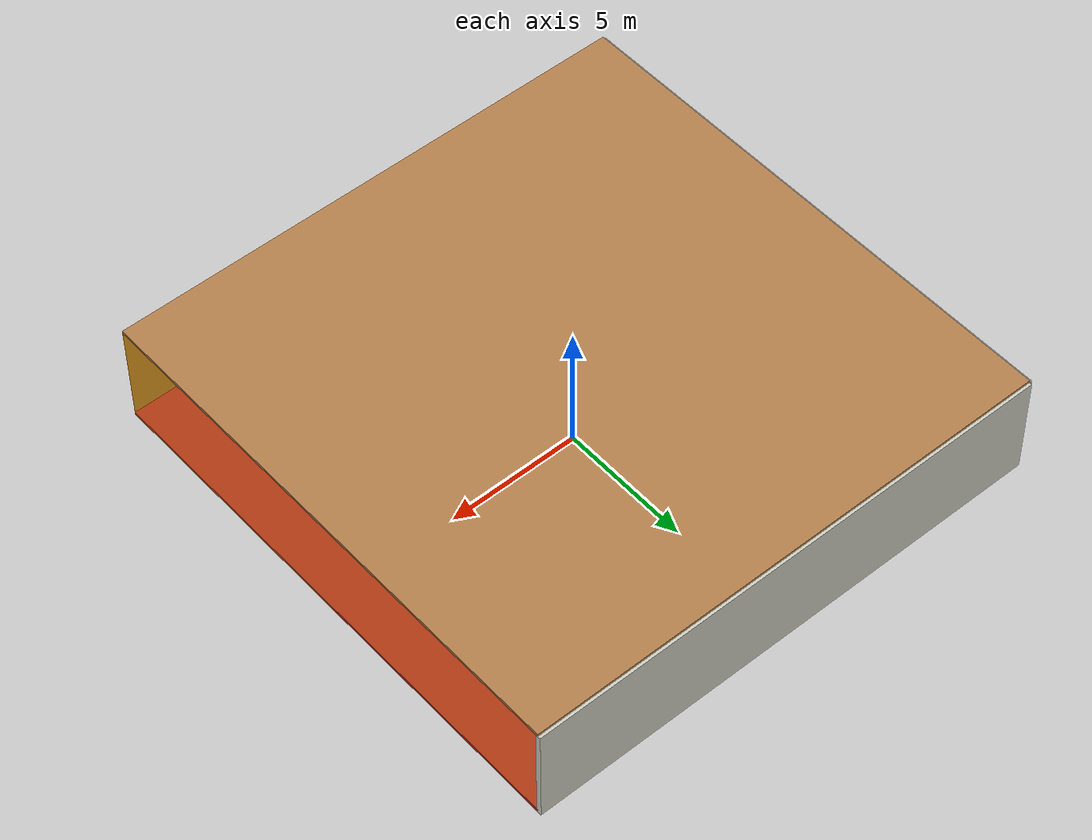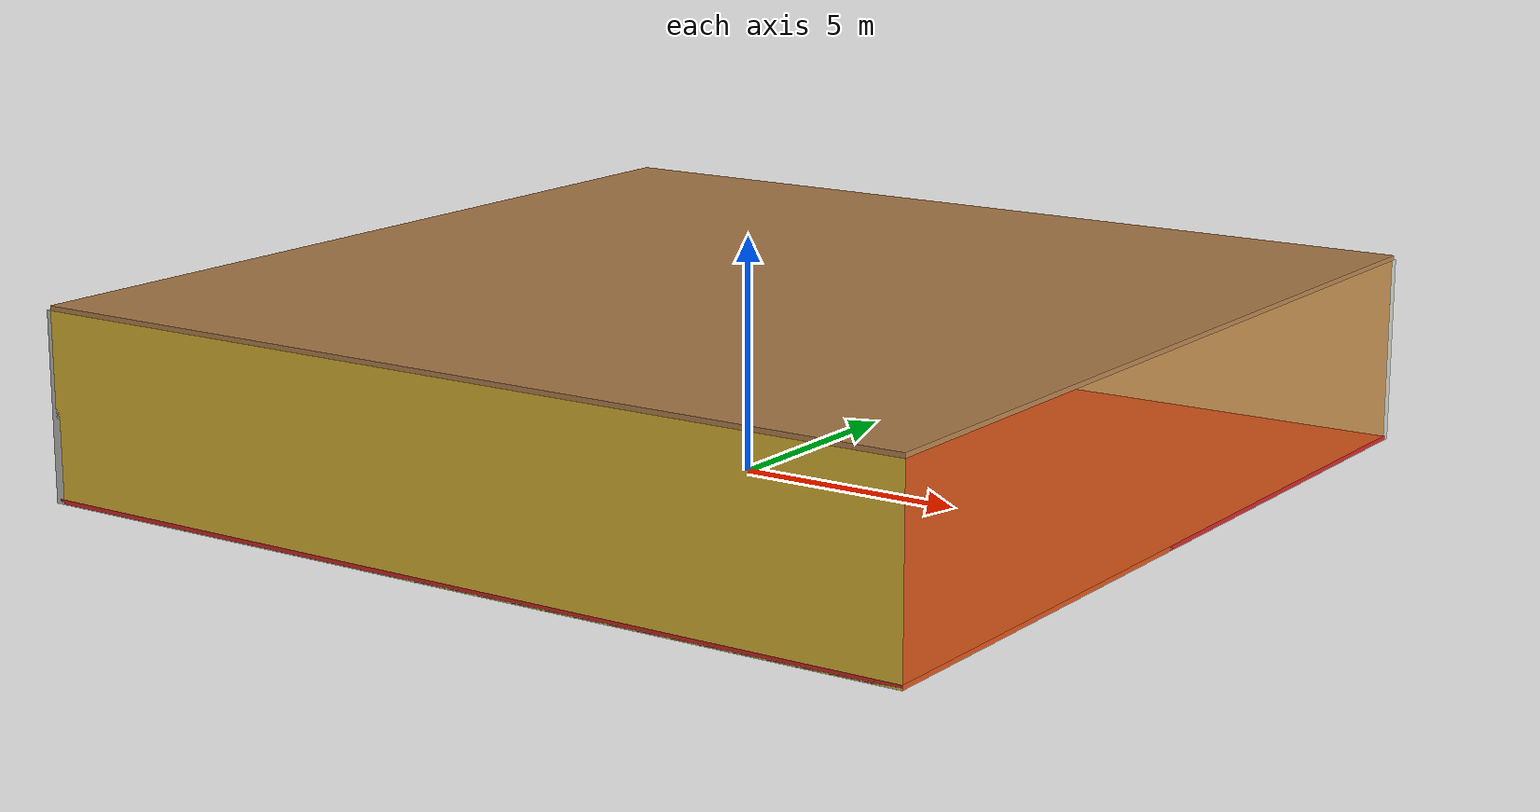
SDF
<sdf version="1.4">
 <world name="default">
  <physics type="ode">
   <max_step_size>0.001</max_step_size>
   <real_time_factor>1</real_time_factor>
   <real_time_update_rate>1000</real_time_update_rate>
   <gravity>0 0 -9.8</gravity>
  </physics>
  <scene><ambient>0.4 0.4 0.4 1</ambient><background>0.7 0.7 0.7 1</background><shadows>1</shadows></scene>
  <model name="Surrounding">
   <static>1</static>
   <link name="Ceiling">
    <collision name="Ceiling_Collision"><geometry><box><size>20 20 0.1</size></box></geometry></collision>
    <visual name="Ceiling_Visual">
     <geometry><box><size>20 20 0.1</size></box></geometry>
     <material>
      <script><uri>file://media/materials/scripts/gazebo.material</uri><name>Gazebo/Wood</name></script>
     </material>
    </visual>
    <pose>0 0 4.05 0 0 0</pose>
   </link>
   <link name="Wall_South">
    <collision name="Wall_South_Collision">
     <geometry><box><size>20 0 4</size></box></geometry>
     <pose>0 0 2 0 -0 0</pose>
    </collision>
    <visual name="Wall_South_Visual">
     <pose>0 0 2 0 -0 0</pose>
     <geometry><box><size>20 0 4</size></box></geometry>
     <material>
      <script><uri>file://media/materials/scripts/gazebo.material</uri><name>Gazebo/Gold</name></script>
     </material>
    </visual>
    <velocity_decay><linear>0</linear><angular>0</angular></velocity_decay>
    <pose>0 -10 0 0 -0 0</pose>
   </link>
   <link name="Wall_East">
    <collision name="Wall_21_Collision">
     <geometry><box><size>20 0 4</size></box></geometry>
     <pose>0 0 2 0 -0 0</pose>
    </collision>
    <visual name="Wall_21_Visual">
     <pose>0 0 2 0 -0 0</pose>
     <geometry><box><size>20 0 4</size></box></geometry>
     <material>
      <script>
       <uri>file://media/materials/scripts/gazebo.material</uri>
       <name>Gazebo/OrangeTransparent</name>
      </script>
     </material>
    </visual>
    <velocity_decay><linear>0</linear><angular>0</angular></velocity_decay>
    <pose>10 0 0 0 -0 1.5708</pose>
   </link>
   <link name="Wall_North">
    <collision name="Wall_22_Collision">
     <geometry><box><size>20 0.2 4</size></box></geometry>
     <pose>0 0 2 0 -0 0</pose>
    </collision>
    <visual name="Wall_22_Visual">
     <pose>0 0 2 0 -0 0</pose>
     <geometry><box><size>20 0.2 4</size></box></geometry>
     <material>
      <script><uri>file://media/materials/scripts/gazebo.material</uri><name>Gazebo/PaintedWall</name></script>
     </material>
    </visual>
    <velocity_decay><linear>0</linear><angular>0</angular></velocity_decay>
    <pose>0 10 0 0 -0 0</pose>
   </link>
   <link name="Wall_West">
    <collision name="Wall_23_Collision">
     <geometry><box><size>20 0.2 4</size></box></geometry>
     <pose>0 0 2 0 -0 0</pose>
    </collision>
    <visual name="Wall_23_Visual">
     <pose>0 0 2 0 -0 0</pose>
     <geometry><box><size>20 0.2 4</size></box></geometry>
     <material>
      <script><uri>file://media/materials/scripts/gazebo.material</uri><name>Gazebo/PioneerBody</name></script>
     </material>
    </visual>
    <velocity_decay><linear>0</linear><angular>0</angular></velocity_decay>
    <pose>-10 0 0 0 0 -1.5708</pose>
   </link>
   <link name="Ground_link">
    <collision name="collision">
     <pose>0 0 .05 0 -0 0</pose>
     <geometry><box><size>20 20 0.1</size></box></geometry>
    </collision>
    <visual name="visual">
     <pose>0 0 .05 0 -0 0</pose>
     <geometry><box><size>20 20 0.1</size></box></geometry>
     <material>
      <script><uri>file://media/materials/scripts/gazebo.material</uri><name>Gazebo/RedGlow</name></script>
     </material>
    </visual>
   </link>
   <static>1</static>
  </model>
  <spherical_coordinates>
   <surface_model>EARTH_WGS84</surface_model>
   <latitude_deg>0</latitude_deg>
   <longitude_deg>0</longitude_deg>
   <elevation>0</elevation>
   <heading_deg>0</heading_deg>
  </spherical_coordinates>
  <light name="lightball_0" type="diffuse">
   <diffuse>0.8 0.8 0.8 1</diffuse>
   <specular>0.2 0.2 0.2 1</specular>
   <attenuation>
    <range>100</range>
    <constant>0.7</constant>
    <linear>0.01</linear>
    <quadratic>0.001</quadratic>
   </attenuation>
   <direction>-0.5 0.1 -0.9</direction>
   <pose>-9.14028484634 -3.78107817355 2.44303614412 0 0 0</pose>
  </light>
  <light name="lightball_1" type="diffuse">
   <diffuse>0.8 0.8 0.8 1</diffuse>
   <specular>0.2 0.2 0.2 1</specular>
   <attenuation>
    <range>100</range>
    <constant>0.7</constant>
    <linear>0.01</linear>
    <quadratic>0.001</quadratic>
   </attenuation>
   <direction>-0.5 0.1 -0.9</direction>
   <pose>3.07904342508 7.10430591236 3.82926992 0 0 0</pose>
  </light>
  <light name="lightball_2" type="diffuse">
   <diffuse>0.8 0.8 0.8 1</diffuse>
   <specular>0.2 0.2 0.2 1</specular>
   <attenuation>
    <range>100</range>
    <constant>0.7</constant>
    <linear>0.01</linear>
    <quadratic>0.001</quadratic>
   </attenuation>
   <direction>-0.5 0.1 -0.9</direction>
   <pose>4.14680278828 -6.74613642839 1.70264220763 0 0 0</pose>
  </light>
  <light name="lightball_3" type="diffuse">
   <diffuse>0.8 0.8 0.8 1</diffuse>
   <specular>0.2 0.2 0.2 1</specular>
   <attenuation>
    <range>100</range>
    <constant>0.7</constant>
    <linear>0.01</linear>
    <quadratic>0.001</quadratic>
   </attenuation>
   <direction>-0.5 0.1 -0.9</direction>
   <pose>-9.25985313424 5.7393625121 1.92101635798 0 0 0</pose>
  </light>
  <light name="lightball_4" type="diffuse">
   <diffuse>0.8 0.8 0.8 1</diffuse>
   <specular>0.2 0.2 0.2 1</specular>
   <attenuation>
    <range>100</range>
    <constant>0.7</constant>
    <linear>0.01</linear>
    <quadratic>0.001</quadratic>
   </attenuation>
   <direction>-0.5 0.1 -0.9</direction>
   <pose>-5.97605744197 -7.33618540421 3.0227325601 0 0 0</pose>
  </light>
  <light name="lightball_5" type="diffuse">
   <diffuse>0.8 0.8 0.8 1</diffuse>
   <specular>0.2 0.2 0.2 1</specular>
   <attenuation>
    <range>100</range>
    <constant>0.7</constant>
    <linear>0.01</linear>
    <quadratic>0.001</quadratic>
   </attenuation>
   <direction>-0.5 0.1 -0.9</direction>
   <pose>-1.77079827217 -7.71640176147 2.06632479925 0 0 0</pose>
  </light>
  <light name="lightball_6" type="diffuse">
   <diffuse>0.8 0.8 0.8 1</diffuse>
   <specular>0.2 0.2 0.2 1</specular>
   <attenuation>
    <range>100</range>
    <constant>0.7</constant>
    <linear>0.01</linear>
    <quadratic>0.001</quadratic>
   </attenuation>
   <direction>-0.5 0.1 -0.9</direction>
   <pose>-2.62714105715 4.99944714132 3.26534669663 0 0 0</pose>
  </light>
  <light name="lightball_7" type="diffuse">
   <diffuse>0.8 0.8 0.8 1</diffuse>
   <specular>0.2 0.2 0.2 1</specular>
   <attenuation>
    <range>100</range>
    <constant>0.7</constant>
    <linear>0.01</linear>
    <quadratic>0.001</quadratic>
   </attenuation>
   <direction>-0.5 0.1 -0.9</direction>
   <pose>8.18682777826 2.85867692182 2.54232092599 0 0 0</pose>
  </light>
  <light name="lightball_8" type="diffuse">
   <diffuse>0.8 0.8 0.8 1</diffuse>
   <specular>0.2 0.2 0.2 1</specular>
   <attenuation>
    <range>100</range>
    <constant>0.7</constant>
    <linear>0.01</linear>
    <quadratic>0.001</quadratic>
   </attenuation>
   <direction>-0.5 0.1 -0.9</direction>
   <pose>3.13936484836 -4.9567432274 1.96241496832 0 0 0</pose>
  </light>
  <light name="lightball_9" type="diffuse">
   <diffuse>0.8 0.8 0.8 1</diffuse>
   <specular>0.2 0.2 0.2 1</specular>
   <attenuation>
    <range>100</range>
    <constant>0.7</constant>
    <linear>0.01</linear>
    <quadratic>0.001</quadratic>
   </attenuation>
   <direction>-0.5 0.1 -0.9</direction>
   <pose>0.732356075349 -5.27327290701 3.74076619405 0 0 0</pose>
  </light>
  <light name="lightball_10" type="diffuse">
   <diffuse>0.8 0.8 0.8 1</diffuse>
   <specular>0.2 0.2 0.2 1</specular>
   <attenuation>
    <range>100</range>
    <constant>0.7</constant>
    <linear>0.01</linear>
    <quadratic>0.001</quadratic>
   </attenuation>
   <direction>-0.5 0.1 -0.9</direction>
   <pose>-1.17590759285 -2.01709562787 1.20543937673 0 0 0</pose>
  </light>
  <light name="lightball_11" type="diffuse">
   <diffuse>0.8 0.8 0.8 1</diffuse>
   <specular>0.2 0.2 0.2 1</specular>
   <attenuation>
    <range>100</range>
    <constant>0.7</constant>
    <linear>0.01</linear>
    <quadratic>0.001</quadratic>
   </attenuation>
   <direction>-0.5 0.1 -0.9</direction>
   <pose>6.03997180862 0.183223595648 3.18246011967 0 0 0</pose>
  </light>
  <light name="lightball_12" type="diffuse">
   <diffuse>0.8 0.8 0.8 1</diffuse>
   <specular>0.2 0.2 0.2 1</specular>
   <attenuation>
    <range>100</range>
    <constant>0.7</constant>
    <linear>0.01</linear>
    <quadratic>0.001</quadratic>
   </attenuation>
   <direction>-0.5 0.1 -0.9</direction>
   <pose>2.59367324511 6.14325000424 0.87905579897 0 0 0</pose>
  </light>
  <light name="lightball_13" type="diffuse">
   <diffuse>0.8 0.8 0.8 1</diffuse>
   <specular>0.2 0.2 0.2 1</specular>
   <attenuation>
    <range>100</range>
    <constant>0.7</constant>
    <linear>0.01</linear>
    <quadratic>0.001</quadratic>
   </attenuation>
   <direction>-0.5 0.1 -0.9</direction>
   <pose>-7.26203448489 8.50745162385 0.948288409802 0 0 0</pose>
  </light>
  <include><uri>model://table</uri><pose>-8.32008430962 4.29336270401 0 0 0 0.444493602507</pose></include>
  <include>
   <uri>model://robocup_3Dsim_goal</uri>
   <pose>-7.03396247825 6.77360692787 0 0 0 1.96078191493</pose>
  </include>
  <include><uri>model://cabinet</uri><pose>1.50700197597 -5.48162281267 0 0 0 3.09587696231</pose></include>
  <include><uri>model://cabinet</uri><pose>3.48114709233 -6.58275846676 0 0 0 0.642346709086</pose></include>
 </world>
</sdf>

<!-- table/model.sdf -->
<sdf version="1.5">
  <model name="table">
    <static>true</static>
    <link name="link">
      <collision name="surface">
        <pose>0 0 1.0 0 0 0</pose>
        <geometry>
          <box>
            <size>1.5 0.8 0.03</size>
          </box>
        </geometry>
        <surface>
          <friction>
            <ode>
              <mu>0.6</mu>
              <mu2>0.6</mu2>
            </ode>
          </friction>
        </surface>
      </collision>
      <visual name="visual1">
        <pose>0 0 1.0 0 0 0</pose>
        <geometry>
          <box>
            <size>1.5 0.8 0.03</size>
          </box>
        </geometry>
        <material>
          <script>
            <uri>model://media/materials/scripts/gazebo.material</uri>
            <name>Gazebo/Wood</name>
          </script>
        </material>
      </visual>
      <collision name="front_left_leg">
        <pose>0.68 0.38 0.5 0 0 0</pose>
        <geometry>
          <cylinder>
            <radius>0.02</radius>
            <length>1.0</length>
          </cylinder>
        </geometry>
      </collision>
      <visual name="front_left_leg">
        <pose>0.68 0.38 0.5 0 0 0</pose>
        <geometry>
          <cylinder>
            <radius>0.02</radius>
            <length>1.0</length>
          </cylinder>
        </geometry>
        <material>
          <script>
            <uri>model://media/materials/scripts/gazebo.material</uri>
            <name>Gazebo/Grey</name>
          </script>
        </material>
      </visual>
      <collision name="front_right_leg">
        <pose>0.68 -0.38 0.5 0 0 0</pose>
        <geometry>
          <cylinder>
            <radius>0.02</radius>
            <length>1.0</length>
          </cylinder>
        </geometry>
      </collision>
      <visual name="front_right_leg">
        <pose>0.68 -0.38 0.5 0 0 0</pose>
        <geometry>
          <cylinder>
            <radius>0.02</radius>
            <length>1.0</length>
          </cylinder>
        </geometry>
        <material>
          <script>
            <uri>model://media/materials/scripts/gazebo.material</uri>
            <name>Gazebo/Grey</name>
          </script>
        </material>
      </visual>
      <collision name="back_right_leg">
        <pose>-0.68 -0.38 0.5 0 0 0</pose>
        <geometry>
          <cylinder>
            <radius>0.02</radius>
            <length>1.0</length>
          </cylinder>
        </geometry>
      </collision>
      <visual name="back_right_leg">
        <pose>-0.68 -0.38 0.5 0 0 0</pose>
        <geometry>
          <cylinder>
            <radius>0.02</radius>
            <length>1.0</length>
          </cylinder>
        </geometry>
        <material>
          <script>
            <uri>model://media/materials/scripts/gazebo.material</uri>
            <name>Gazebo/Grey</name>
          </script>
        </material>
      </visual>
      <collision name="back_left_leg">
        <pose>-0.68 0.38 0.5 0 0 0</pose>
        <geometry>
          <cylinder>
            <radius>0.02</radius>
            <length>1.0</length>
          </cylinder>
        </geometry>
      </collision>
      <visual name="back_left_leg">
        <pose>-0.68 0.38 0.5 0 0 0</pose>
        <geometry>
          <cylinder>
            <radius>0.02</radius>
            <length>1.0</length>
          </cylinder>
        </geometry>
        <material>
          <script>
            <uri>model://media/materials/scripts/gazebo.material</uri>
            <name>Gazebo/Grey</name>
          </script>
        </material>
      </visual>
    </link>
  </model>
</sdf>

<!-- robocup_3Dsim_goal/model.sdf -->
<sdf version="1.5">
  <model name="robocup_3d_goal">
    <static>true</static>
    <link name="left_post">
      <pose>0 1.05 0.45 0 0 0</pose>
      <collision name="collision">
        <geometry>
          <cylinder>
            <radius>0.05</radius>
            <length>0.9</length>
          </cylinder>
        </geometry>
      </collision>
      <visual name="visual">
        <geometry>
          <cylinder>
            <radius>0.05</radius>
            <length>0.9</length>
          </cylinder>
        </geometry>
        <material>
          <script>
            <uri>file://media/materials/scripts/gazebo.material</uri>
            <name>Gazebo/ZincYellow</name>
          </script>
        </material>
      </visual>
    </link>
    <link name="left_support_horiz_lower">
      <pose>0.30 1.05 0.01 0 0 0</pose>
      <collision name="collision">
        <geometry>
          <box>
            <size>0.50 0.02 0.02</size>
          </box>
        </geometry>
      </collision>
      <visual name="visual">
        <geometry>
          <box>
            <size>0.50 0.02 0.02</size>
          </box>
        </geometry>
        <material>
          <script>
            <uri>file://media/materials/scripts/gazebo.material</uri>
            <name>Gazebo/White</name>
          </script>
        </material>
      </visual>
    </link>
    <link name="left_support_horiz_upper">
      <pose>0.30 1.05 0.79 0 0 0</pose>
      <collision name="collision">
        <geometry>
          <box>
            <size>0.50 0.02 0.02</size>
          </box>
        </geometry>
      </collision>
      <visual name="visual">
        <geometry>
          <box>
            <size>0.50 0.02 0.02</size>
          </box>
        </geometry>
        <material>
          <script>
            <uri>file://media/materials/scripts/gazebo.material</uri>
            <name>Gazebo/White</name>
          </script>
        </material>
      </visual>
    </link>
    <link name="left_support_vertical">
      <pose>0.56 1.05 0.4 0 1.5708 0</pose>
      <collision name="collision">
        <geometry>
          <box>
            <size>0.80 0.02 0.02</size>
          </box>
        </geometry>
      </collision>
      <visual name="visual">
        <geometry>
          <box>
            <size>0.80 0.02 0.02</size>
          </box>
        </geometry>
        <material>
          <script>
            <uri>file://media/materials/scripts/gazebo.material</uri>
            <name>Gazebo/White</name>
          </script>
        </material>
      </visual>
    </link>
    <link name="right_support_horiz_lower">
      <pose>0.30 -1.05 0.01 0 0 0</pose>
      <collision name="collision">
        <geometry>
          <box>
            <size>0.50 0.02 0.02</size>
          </box>
        </geometry>
      </collision>
      <visual name="visual">
        <geometry>
          <box>
            <size>0.50 0.02 0.02</size>
          </box>
        </geometry>
        <material>
          <script>
            <uri>file://media/materials/scripts/gazebo.material</uri>
            <name>Gazebo/White</name>
          </script>
        </material>
      </visual>
    </link>
    <link name="right_support_horiz_upper">
      <pose>0.30 -1.05 0.79 0 0 0</pose>
      <collision name="collision">
        <geometry>
          <box>
            <size>0.50 0.02 0.02</size>
          </box>
        </geometry>
      </collision>
      <visual name="visual">
        <geometry>
          <box>
            <size>0.50 0.02 0.02</size>
          </box>
        </geometry>
        <material>
          <script>
            <uri>file://media/materials/scripts/gazebo.material</uri>
            <name>Gazebo/White</name>
          </script>
        </material>
      </visual>
    </link>
    <link name="right_support_vertical">
      <pose>0.56 -1.05 0.4 0 1.5708 0</pose>
      <collision name="collision">
        <geometry>
          <box>
            <size>0.80 0.02 0.02</size>
          </box>
        </geometry>
      </collision>
      <visual name="visual">
        <geometry>
          <box>
            <size>0.80 0.02 0.02</size>
          </box>
        </geometry>
        <material>
          <script>
            <uri>file://media/materials/scripts/gazebo.material</uri>
            <name>Gazebo/White</name>
          </script>
        </material>
      </visual>
    </link>
    <link name="center_support_horiz_lower">
      <pose>0.56 0 0.01 0 1.5708 0</pose>
      <collision name="collision">
        <geometry>
          <box>
            <size>0.02 2.08 0.02</size>
          </box>
        </geometry>
      </collision>
      <visual name="visual">
        <geometry>
          <box>
            <size>0.02 2.08 0.02</size>
          </box>
        </geometry>
        <material>
          <script>
            <uri>file://media/materials/scripts/gazebo.material</uri>
            <name>Gazebo/White</name>
          </script>
        </material>
      </visual>
    </link>
    <link name="center_support_horiz_upper">
      <pose>0.56 0 0.79 0 1.5708 0</pose>
      <collision name="collision">
        <geometry>
          <box>
            <size>0.02 2.08 0.02</size>
          </box>
        </geometry>
      </collision>
      <visual name="visual">
        <geometry>
          <box>
            <size>0.02 2.08 0.02</size>
          </box>
        </geometry>
        <material>
          <script>
            <uri>file://media/materials/scripts/gazebo.material</uri>
            <name>Gazebo/White</name>
          </script>
        </material>
      </visual>
    </link>
    <link name="right_post">
      <pose>0 -1.05 0.45 0 0 0</pose>
      <collision name="collision">
        <geometry>
          <cylinder>
            <radius>0.05</radius>
            <length>0.9</length>
          </cylinder>
        </geometry>
      </collision>
      <visual name="visual">
        <geometry>
          <cylinder>
            <radius>0.05</radius>
            <length>0.9</length>
          </cylinder>
        </geometry>
        <material>
          <script>
            <uri>file://media/materials/scripts/gazebo.material</uri>
            <name>Gazebo/ZincYellow</name>
          </script>
        </material>
      </visual>
    </link>
    <link name="crossbar">
      <pose>0 0 0.85 1.57 1.57 0</pose>
      <collision name="collision">
        <geometry>
          <cylinder>
            <radius>0.05</radius>
            <length>2.0</length>
          </cylinder>
        </geometry>
      </collision>
      <visual name="visual">
        <geometry>
          <cylinder>
            <radius>0.05</radius>
            <length>2.0</length>
          </cylinder>
        </geometry>
        <material>
          <script>
            <uri>file://media/materials/scripts/gazebo.material</uri>
            <name>Gazebo/ZincYellow</name>
          </script>
        </material>
      </visual>
    </link>
    <link name="center_net">
      <pose>0.56 0 0.40 0 0 0</pose>
      <collision name="collision">
        <geometry>
          <box>
            <size>0.01 2.1 0.80</size>
          </box>
        </geometry>
      </collision>
      <visual name="visual">
        <geometry>
          <box>
            <size>0.01 2.1 0.80</size>
          </box>
        </geometry>
        <material>
          <script>
            <uri>model://../model_source/models/robocup09_spl_field/materials/scripts/</uri>
            <uri>model://../model_source/models/robocup09_spl_field/materials/textures/</uri>
            <name>RoboCup/Net</name>
          </script>
        </material>
      </visual>
    </link>
    <link name="left_net">
      <pose>0.30 1.05 0.40 0 0 0</pose>
      <collision name="collision">
        <geometry>
          <box>
            <size>0.50 0.01 0.76</size>
          </box>
        </geometry>
      </collision>
      <visual name="visual">
        <geometry>
          <box>
            <size>0.50 0.01 0.76</size>
          </box>
        </geometry>
        <material>
          <script>
            <uri>model://../model_source/models/robocup09_spl_field/materials/scripts/</uri>
            <uri>model://../model_source/models/robocup09_spl_field/materials/textures/</uri>
            <name>RoboCup/Net</name>
          </script>
        </material>
      </visual>
    </link>
    <link name="right_net">
      <pose>0.30 -1.05 0.40 0 0 0</pose>
      <collision name="collision">
        <geometry>
          <box>
            <size>0.50 0.01 0.76</size>
          </box>
        </geometry>
      </collision>
      <visual name="visual">
        <geometry>
          <box>
            <size>0.50 0.01 0.76</size>
          </box>
        </geometry>
        <material>
          <script>
            <uri>model://../model_source/models/robocup09_spl_field/materials/scripts/</uri>
            <uri>model://../model_source/models/robocup09_spl_field/materials/textures/</uri>
            <name>RoboCup/Net</name>
          </script>
        </material>
      </visual>
    </link>
  </model>
</sdf>

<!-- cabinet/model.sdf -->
<sdf version="1.5">
  <model name="cabinet">
    <static>true</static>
    <link name="cabinet_bottom_plate">
      <inertial>
        <pose>0 0 -1 0 0 0</pose>
        <inertia>
          <ixx>2.050000</ixx>
          <ixy>0</ixy>
          <ixz>0</ixz>
          <iyy>2.050000</iyy>
          <iyz>0</iyz>
          <izz>2.050000</izz>
        </inertia>
        <mass>25.000000</mass>
      </inertial>
      <collision name="cabinet_bottom_plate_geom">
        <pose>0 0 0.010000 0 0 0</pose>
        <geometry>
          <box>
            <size>0.450000 0.450000 0.020000</size>
          </box>
        </geometry>
      </collision>
      <visual name="cabinet_bottom_plate_geom_visual">
        <pose>0 0 0.010000 0 0 0</pose>
        <geometry>
          <box>
            <size>0.450000 0.450000 0.020000</size>
          </box>
        </geometry>
        <material>
          <script>
            <uri>model://media/materials/scripts/gazebo.material</uri>
            <name>Gazebo/Wood</name>
          </script>
        </material>
      </visual>
      <collision name="cabinet_bottom_plate_geom_cabinet_back_plate">
        <pose>0.235000 0 0.510000 0 0 0</pose>
        <geometry>
          <box>
            <size>0.020000 0.450000 1.020000</size>
          </box>
        </geometry>
      </collision>
      <visual name="cabinet_bottom_plate_geom_cabinet_back_plate_visual">
        <pose>0.235000 0 0.510000 0 0 0</pose>
        <geometry>
          <box>
            <size>0.020000 0.450000 1.020000</size>
          </box>
        </geometry>
        <material>
          <script>
            <uri>model://media/materials/scripts/gazebo.material</uri>
            <name>Gazebo/Wood</name>
          </script>
        </material>
      </visual>
      <collision name="cabinet_bottom_plate_geom_cabinet_left_plate">
        <pose>0 0.235000 0.510000 0 0 0</pose>
        <geometry>
          <box>
            <size>0.450000 0.020000 1.020000</size>
          </box>
        </geometry>
      </collision>
      <visual name="cabinet_bottom_plate_geom_cabinet_left_plate_visual">
        <pose>0 0.235000 0.510000 0 0 0</pose>
        <geometry>
          <box>
            <size>0.450000 0.020000 1.020000</size>
          </box>
        </geometry>
        <material>
          <script>
            <uri>model://media/materials/scripts/gazebo.material</uri>
            <name>Gazebo/Wood</name>
          </script>
        </material>
      </visual>
      <collision name="cabinet_bottom_plate_geom_cabinet_middle_plate">
        <pose>0 0 0.510000 0 0 0</pose>
        <geometry>
          <box>
            <size>0.450000 0.450000 0.020000</size>
          </box>
        </geometry>
      </collision>
      <visual name="cabinet_bottom_plate_geom_cabinet_middle_plate_visual">
        <pose>0 0 0.510000 0 0 0</pose>
        <geometry>
          <box>
            <size>0.450000 0.450000 0.020000</size>
          </box>
        </geometry>
        <material>
          <script>
            <uri>model://media/materials/scripts/gazebo.material</uri>
            <name>Gazebo/Wood</name>
          </script>
        </material>
      </visual>
      <collision name="cabinet_bottom_plate_geom_cabinet_right_plate">
        <pose>0 -0.235000 0.510000 0 0 0</pose>
        <geometry>
          <box>
            <size>0.450000 0.020000 1.020000</size>
          </box>
        </geometry>
      </collision>
      <visual name="cabinet_bottom_plate_geom_cabinet_right_plate_visual">
        <pose>0 -0.235000 0.510000 0 0 0</pose>
        <geometry>
          <box>
            <size>0.450000 0.020000 1.020000</size>
          </box>
        </geometry>
        <material>
          <script>
            <uri>model://media/materials/scripts/gazebo.material</uri>
            <name>Gazebo/Wood</name>
          </script>
        </material>
      </visual>
      <collision name="cabinet_bottom_plate_geom_cabinet_top_plate">
        <pose>0 0 1.010000 0 0 0</pose>
        <geometry>
          <box>
            <size>0.450000 0.450000 0.020000</size>
          </box>
        </geometry>
      </collision>
      <visual name="cabinet_bottom_plate_geom_cabinet_top_plate_visual">
        <pose>0 0 1.010000 0 0 0</pose>
        <geometry>
          <box>
            <size>0.450000 0.450000 0.020000</size>
          </box>
        </geometry>
        <material>
          <script>
            <uri>model://media/materials/scripts/gazebo.material</uri>
            <name>Gazebo/Wood</name>
          </script>
        </material>
      </visual>
    </link>
  </model>
</sdf>
